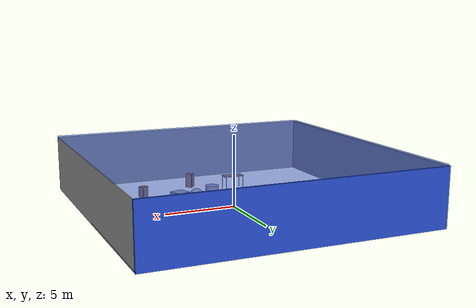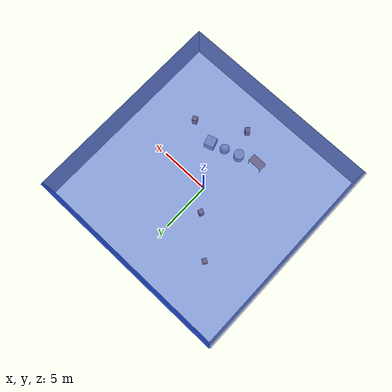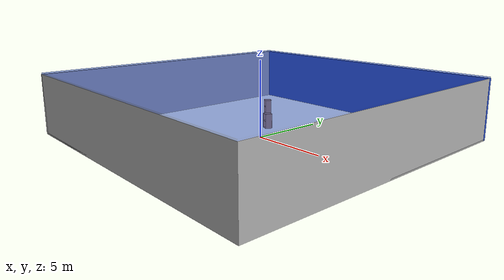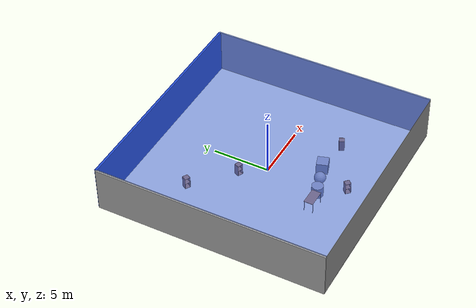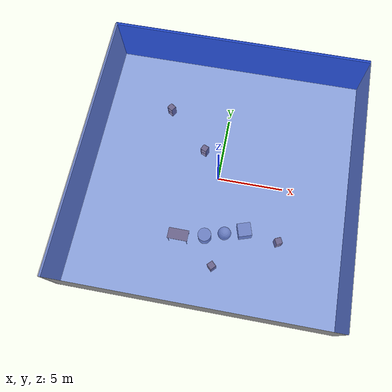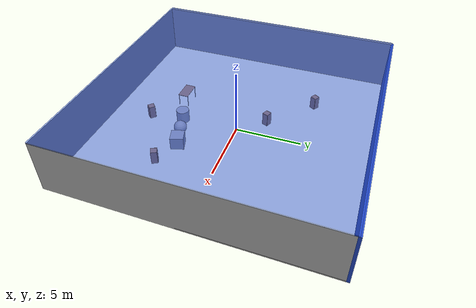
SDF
<sdf version="1.4">
 <world name="default">
  <physics type="ode">
   <max_step_size>0.001</max_step_size>
   <real_time_factor>1</real_time_factor>
   <real_time_update_rate>1000</real_time_update_rate>
   <gravity>0 0 -9.8</gravity>
  </physics>
  <scene><ambient>0.4 0.4 0.4 1</ambient><background>0.7 0.7 0.7 1</background><shadows>1</shadows></scene>
  <model name="Surrounding">
   <static>1</static>
   <link name="Ceiling">
    <collision name="Ceiling_Collision"><geometry><box><size>20 20 0.1</size></box></geometry></collision>
    <visual name="Ceiling_Visual">
     <geometry><box><size>20 20 0.1</size></box></geometry>
     <material>
      <script><uri>file://media/materials/scripts/gazebo.material</uri><name>Gazebo/BlueTransparent</name></script>
     </material>
    </visual>
    <pose>0 0 4.05 0 0 0</pose>
   </link>
   <link name="Wall_South">
    <collision name="Wall_South_Collision">
     <geometry><box><size>20 0 4</size></box></geometry>
     <pose>0 0 2 0 -0 0</pose>
    </collision>
    <visual name="Wall_South_Visual">
     <pose>0 0 2 0 -0 0</pose>
     <geometry><box><size>20 0 4</size></box></geometry>
     <material>
      <script><uri>file://media/materials/scripts/gazebo.material</uri><name>Gazebo/GreyGradientSky</name></script>
     </material>
    </visual>
    <velocity_decay><linear>0</linear><angular>0</angular></velocity_decay>
    <pose>0 -10 0 0 -0 0</pose>
   </link>
   <link name="Wall_East">
    <collision name="Wall_21_Collision">
     <geometry><box><size>20 0 4</size></box></geometry>
     <pose>0 0 2 0 -0 0</pose>
    </collision>
    <visual name="Wall_21_Visual">
     <pose>0 0 2 0 -0 0</pose>
     <geometry><box><size>20 0 4</size></box></geometry>
     <material>
      <script><uri>file://media/materials/scripts/gazebo.material</uri><name>Gazebo/JointAnchor</name></script>
     </material>
    </visual>
    <velocity_decay><linear>0</linear><angular>0</angular></velocity_decay>
    <pose>10 0 0 0 -0 1.5708</pose>
   </link>
   <link name="Wall_North">
    <collision name="Wall_22_Collision">
     <geometry><box><size>20 0.2 4</size></box></geometry>
     <pose>0 0 2 0 -0 0</pose>
    </collision>
    <visual name="Wall_22_Visual">
     <pose>0 0 2 0 -0 0</pose>
     <geometry><box><size>20 0.2 4</size></box></geometry>
     <material>
      <script><uri>file://media/materials/scripts/gazebo.material</uri><name>Gazebo/BlueGlow</name></script>
     </material>
    </visual>
    <velocity_decay><linear>0</linear><angular>0</angular></velocity_decay>
    <pose>0 10 0 0 -0 0</pose>
   </link>
   <link name="Wall_West">
    <collision name="Wall_23_Collision">
     <geometry><box><size>20 0.2 4</size></box></geometry>
     <pose>0 0 2 0 -0 0</pose>
    </collision>
    <visual name="Wall_23_Visual">
     <pose>0 0 2 0 -0 0</pose>
     <geometry><box><size>20 0.2 4</size></box></geometry>
     <material>
      <script><uri>file://media/materials/scripts/gazebo.material</uri><name>Gazebo/LightOn</name></script>
     </material>
    </visual>
    <velocity_decay><linear>0</linear><angular>0</angular></velocity_decay>
    <pose>-10 0 0 0 0 -1.5708</pose>
   </link>
   <link name="Ground_link">
    <collision name="collision">
     <pose>0 0 .05 0 -0 0</pose>
     <geometry><box><size>20 20 0.1</size></box></geometry>
    </collision>
    <visual name="visual">
     <pose>0 0 .05 0 -0 0</pose>
     <geometry><box><size>20 20 0.1</size></box></geometry>
     <material>
      <script><uri>file://media/materials/scripts/gazebo.material</uri><name>Gazebo/GreyTransparent</name></script>
     </material>
    </visual>
   </link>
   <static>1</static>
  </model>
  <spherical_coordinates>
   <surface_model>EARTH_WGS84</surface_model>
   <latitude_deg>0</latitude_deg>
   <longitude_deg>0</longitude_deg>
   <elevation>0</elevation>
   <heading_deg>0</heading_deg>
  </spherical_coordinates>
  <light name="lightball_0" type="diffuse">
   <diffuse>0.8 0.8 0.8 1</diffuse>
   <specular>0.2 0.2 0.2 1</specular>
   <attenuation>
    <range>100</range>
    <constant>0.7</constant>
    <linear>0.01</linear>
    <quadratic>0.001</quadratic>
   </attenuation>
   <direction>-0.5 0.1 -0.9</direction>
   <pose>6.66632545685 -9.38345732907 1.12161074059 0 0 0</pose>
  </light>
  <light name="lightball_1" type="diffuse">
   <diffuse>0.8 0.8 0.8 1</diffuse>
   <specular>0.2 0.2 0.2 1</specular>
   <attenuation>
    <range>100</range>
    <constant>0.7</constant>
    <linear>0.01</linear>
    <quadratic>0.001</quadratic>
   </attenuation>
   <direction>-0.5 0.1 -0.9</direction>
   <pose>4.50397429094 4.70581208191 0.716722788777 0 0 0</pose>
  </light>
  <light name="lightball_2" type="diffuse">
   <diffuse>0.8 0.8 0.8 1</diffuse>
   <specular>0.2 0.2 0.2 1</specular>
   <attenuation>
    <range>100</range>
    <constant>0.7</constant>
    <linear>0.01</linear>
    <quadratic>0.001</quadratic>
   </attenuation>
   <direction>-0.5 0.1 -0.9</direction>
   <pose>-6.94884479971 2.56166150545 1.59174461425 0 0 0</pose>
  </light>
  <include><uri>model://cabinet</uri><pose>-4.74787970628 5.00289906314 0 0 0 1.02233300715</pose></include>
  <include><uri>model://table</uri><pose>-2.0921533332 -5.07339888419 0 0 0 3.13350188701</pose></include>
  <include><uri>model://cabinet</uri><pose>-1.44592239635 1.95828421605 0 0 0 1.17503953213</pose></include>
  <include><uri>model://cabinet</uri><pose>0.715933158933 -6.85210485661 0 0 0 0.793562858183</pose></include>
  <include>
   <uri>model://textured_shapes</uri>
   <pose>1.20017944909 -4.18661402777 0 0 0 1.87692422998</pose>
  </include>
  <include><uri>model://cabinet</uri><pose>5.19229212347 -4.26242433601 0 0 0 2.02109443068</pose></include>
 </world>
</sdf>

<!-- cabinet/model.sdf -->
<sdf version="1.5">
  <model name="cabinet">
    <static>true</static>
    <link name="cabinet_bottom_plate">
      <inertial>
        <pose>0 0 -1 0 0 0</pose>
        <inertia>
          <ixx>2.050000</ixx>
          <ixy>0</ixy>
          <ixz>0</ixz>
          <iyy>2.050000</iyy>
          <iyz>0</iyz>
          <izz>2.050000</izz>
        </inertia>
        <mass>25.000000</mass>
      </inertial>
      <collision name="cabinet_bottom_plate_geom">
        <pose>0 0 0.010000 0 0 0</pose>
        <geometry>
          <box>
            <size>0.450000 0.450000 0.020000</size>
          </box>
        </geometry>
      </collision>
      <visual name="cabinet_bottom_plate_geom_visual">
        <pose>0 0 0.010000 0 0 0</pose>
        <geometry>
          <box>
            <size>0.450000 0.450000 0.020000</size>
          </box>
        </geometry>
        <material>
          <script>
            <uri>model://media/materials/scripts/gazebo.material</uri>
            <name>Gazebo/Wood</name>
          </script>
        </material>
      </visual>
      <collision name="cabinet_bottom_plate_geom_cabinet_back_plate">
        <pose>0.235000 0 0.510000 0 0 0</pose>
        <geometry>
          <box>
            <size>0.020000 0.450000 1.020000</size>
          </box>
        </geometry>
      </collision>
      <visual name="cabinet_bottom_plate_geom_cabinet_back_plate_visual">
        <pose>0.235000 0 0.510000 0 0 0</pose>
        <geometry>
          <box>
            <size>0.020000 0.450000 1.020000</size>
          </box>
        </geometry>
        <material>
          <script>
            <uri>model://media/materials/scripts/gazebo.material</uri>
            <name>Gazebo/Wood</name>
          </script>
        </material>
      </visual>
      <collision name="cabinet_bottom_plate_geom_cabinet_left_plate">
        <pose>0 0.235000 0.510000 0 0 0</pose>
        <geometry>
          <box>
            <size>0.450000 0.020000 1.020000</size>
          </box>
        </geometry>
      </collision>
      <visual name="cabinet_bottom_plate_geom_cabinet_left_plate_visual">
        <pose>0 0.235000 0.510000 0 0 0</pose>
        <geometry>
          <box>
            <size>0.450000 0.020000 1.020000</size>
          </box>
        </geometry>
        <material>
          <script>
            <uri>model://media/materials/scripts/gazebo.material</uri>
            <name>Gazebo/Wood</name>
          </script>
        </material>
      </visual>
      <collision name="cabinet_bottom_plate_geom_cabinet_middle_plate">
        <pose>0 0 0.510000 0 0 0</pose>
        <geometry>
          <box>
            <size>0.450000 0.450000 0.020000</size>
          </box>
        </geometry>
      </collision>
      <visual name="cabinet_bottom_plate_geom_cabinet_middle_plate_visual">
        <pose>0 0 0.510000 0 0 0</pose>
        <geometry>
          <box>
            <size>0.450000 0.450000 0.020000</size>
          </box>
        </geometry>
        <material>
          <script>
            <uri>model://media/materials/scripts/gazebo.material</uri>
            <name>Gazebo/Wood</name>
          </script>
        </material>
      </visual>
      <collision name="cabinet_bottom_plate_geom_cabinet_right_plate">
        <pose>0 -0.235000 0.510000 0 0 0</pose>
        <geometry>
          <box>
            <size>0.450000 0.020000 1.020000</size>
          </box>
        </geometry>
      </collision>
      <visual name="cabinet_bottom_plate_geom_cabinet_right_plate_visual">
        <pose>0 -0.235000 0.510000 0 0 0</pose>
        <geometry>
          <box>
            <size>0.450000 0.020000 1.020000</size>
          </box>
        </geometry>
        <material>
          <script>
            <uri>model://media/materials/scripts/gazebo.material</uri>
            <name>Gazebo/Wood</name>
          </script>
        </material>
      </visual>
      <collision name="cabinet_bottom_plate_geom_cabinet_top_plate">
        <pose>0 0 1.010000 0 0 0</pose>
        <geometry>
          <box>
            <size>0.450000 0.450000 0.020000</size>
          </box>
        </geometry>
      </collision>
      <visual name="cabinet_bottom_plate_geom_cabinet_top_plate_visual">
        <pose>0 0 1.010000 0 0 0</pose>
        <geometry>
          <box>
            <size>0.450000 0.450000 0.020000</size>
          </box>
        </geometry>
        <material>
          <script>
            <uri>model://media/materials/scripts/gazebo.material</uri>
            <name>Gazebo/Wood</name>
          </script>
        </material>
      </visual>
    </link>
  </model>
</sdf>

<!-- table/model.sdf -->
<sdf version="1.5">
  <model name="table">
    <static>true</static>
    <link name="link">
      <collision name="surface">
        <pose>0 0 1.0 0 0 0</pose>
        <geometry>
          <box>
            <size>1.5 0.8 0.03</size>
          </box>
        </geometry>
        <surface>
          <friction>
            <ode>
              <mu>0.6</mu>
              <mu2>0.6</mu2>
            </ode>
          </friction>
        </surface>
      </collision>
      <visual name="visual1">
        <pose>0 0 1.0 0 0 0</pose>
        <geometry>
          <box>
            <size>1.5 0.8 0.03</size>
          </box>
        </geometry>
        <material>
          <script>
            <uri>model://media/materials/scripts/gazebo.material</uri>
            <name>Gazebo/Wood</name>
          </script>
        </material>
      </visual>
      <collision name="front_left_leg">
        <pose>0.68 0.38 0.5 0 0 0</pose>
        <geometry>
          <cylinder>
            <radius>0.02</radius>
            <length>1.0</length>
          </cylinder>
        </geometry>
      </collision>
      <visual name="front_left_leg">
        <pose>0.68 0.38 0.5 0 0 0</pose>
        <geometry>
          <cylinder>
            <radius>0.02</radius>
            <length>1.0</length>
          </cylinder>
        </geometry>
        <material>
          <script>
            <uri>model://media/materials/scripts/gazebo.material</uri>
            <name>Gazebo/Grey</name>
          </script>
        </material>
      </visual>
      <collision name="front_right_leg">
        <pose>0.68 -0.38 0.5 0 0 0</pose>
        <geometry>
          <cylinder>
            <radius>0.02</radius>
            <length>1.0</length>
          </cylinder>
        </geometry>
      </collision>
      <visual name="front_right_leg">
        <pose>0.68 -0.38 0.5 0 0 0</pose>
        <geometry>
          <cylinder>
            <radius>0.02</radius>
            <length>1.0</length>
          </cylinder>
        </geometry>
        <material>
          <script>
            <uri>model://media/materials/scripts/gazebo.material</uri>
            <name>Gazebo/Grey</name>
          </script>
        </material>
      </visual>
      <collision name="back_right_leg">
        <pose>-0.68 -0.38 0.5 0 0 0</pose>
        <geometry>
          <cylinder>
            <radius>0.02</radius>
            <length>1.0</length>
          </cylinder>
        </geometry>
      </collision>
      <visual name="back_right_leg">
        <pose>-0.68 -0.38 0.5 0 0 0</pose>
        <geometry>
          <cylinder>
            <radius>0.02</radius>
            <length>1.0</length>
          </cylinder>
        </geometry>
        <material>
          <script>
            <uri>model://media/materials/scripts/gazebo.material</uri>
            <name>Gazebo/Grey</name>
          </script>
        </material>
      </visual>
      <collision name="back_left_leg">
        <pose>-0.68 0.38 0.5 0 0 0</pose>
        <geometry>
          <cylinder>
            <radius>0.02</radius>
            <length>1.0</length>
          </cylinder>
        </geometry>
      </collision>
      <visual name="back_left_leg">
        <pose>-0.68 0.38 0.5 0 0 0</pose>
        <geometry>
          <cylinder>
            <radius>0.02</radius>
            <length>1.0</length>
          </cylinder>
        </geometry>
        <material>
          <script>
            <uri>model://media/materials/scripts/gazebo.material</uri>
            <name>Gazebo/Grey</name>
          </script>
        </material>
      </visual>
    </link>
  </model>
</sdf>

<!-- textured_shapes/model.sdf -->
<sdf version="1.6">
  <model name="textured_shapes">
    <pose>0 0 0.5 0 0 0</pose>
    <link name="box">
      <pose>0 -1.5 0 0 0 0</pose>
      <collision name="collision">
        <geometry>
          <box>
            <size>1 1 1</size>
          </box>
        </geometry>
      </collision>
      <visual name="visual">
        <geometry>
          <box>
            <size>1 1 1</size>
          </box>
        </geometry>
        <material>
          <script>
            <uri>model://../model_source/models/textured_shapes/materials/scripts</uri>
            <uri>model://../model_source/models/textured_shapes/materials/textures</uri>
            <name>TexturedShape/Squares</name>
          </script>
        </material>
      </visual>
    </link>
    <link name="sphere">
      <collision name="collision">
        <geometry>
          <sphere>
            <radius>0.5</radius>
          </sphere>
        </geometry>
      </collision>
      <visual name="visual">
        <geometry>
          <sphere>
            <radius>0.5</radius>
          </sphere>
        </geometry>
        <material>
          <script>
            <uri>model://../model_source/models/textured_shapes/materials/scripts</uri>
            <uri>model://../model_source/models/textured_shapes/materials/textures</uri>
            <name>TexturedShape/Squares</name>
          </script>
        </material>
      </visual>
    </link>
    <link name="cylinder">
      <pose>0 1.5 0 0 0 0</pose>
      <collision name="collision">
        <geometry>
          <cylinder>
            <radius>0.5</radius>
            <length>1</length>
          </cylinder>
        </geometry>
      </collision>
      <visual name="visual">
        <geometry>
          <cylinder>
            <radius>0.5</radius>
            <length>1</length>
          </cylinder>
        </geometry>
        <material>
          <script>
            <uri>model://../model_source/models/textured_shapes/materials/scripts</uri>
            <uri>model://../model_source/models/textured_shapes/materials/textures</uri>
            <name>TexturedShape/Squares</name>
          </script>
        </material>
      </visual>
    </link>
  </model>
</sdf>
